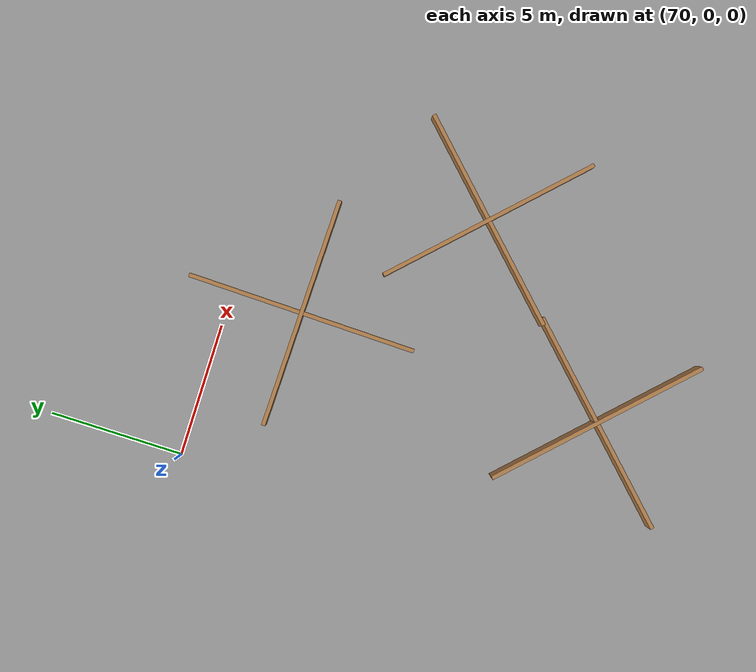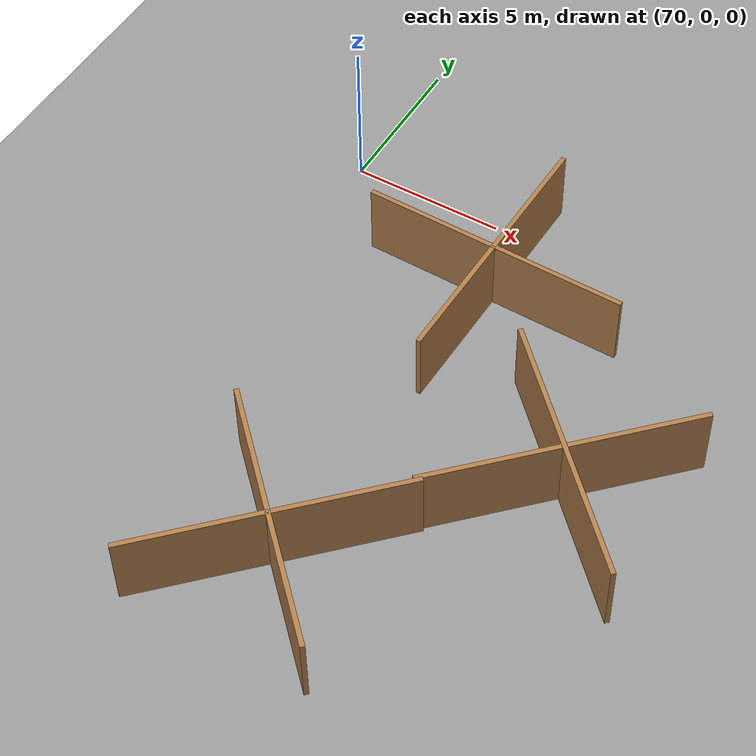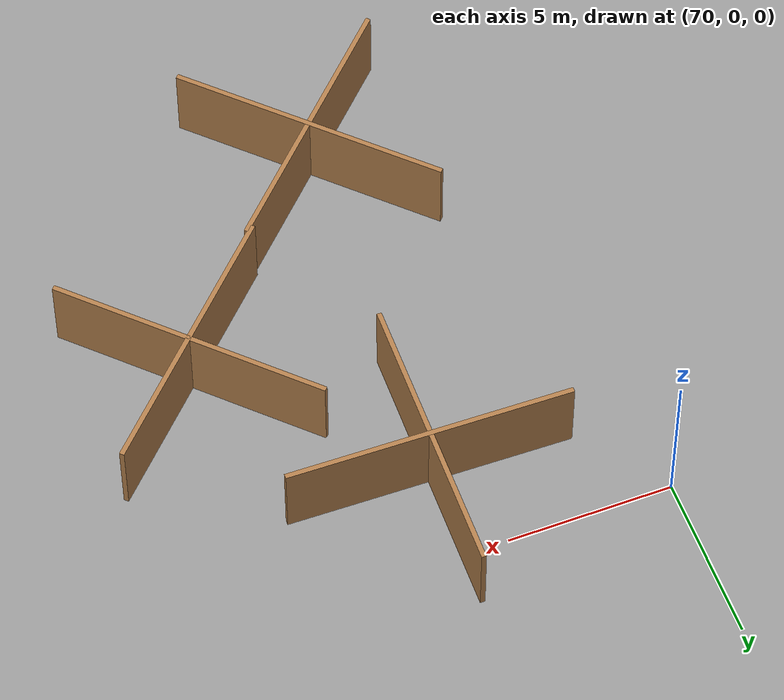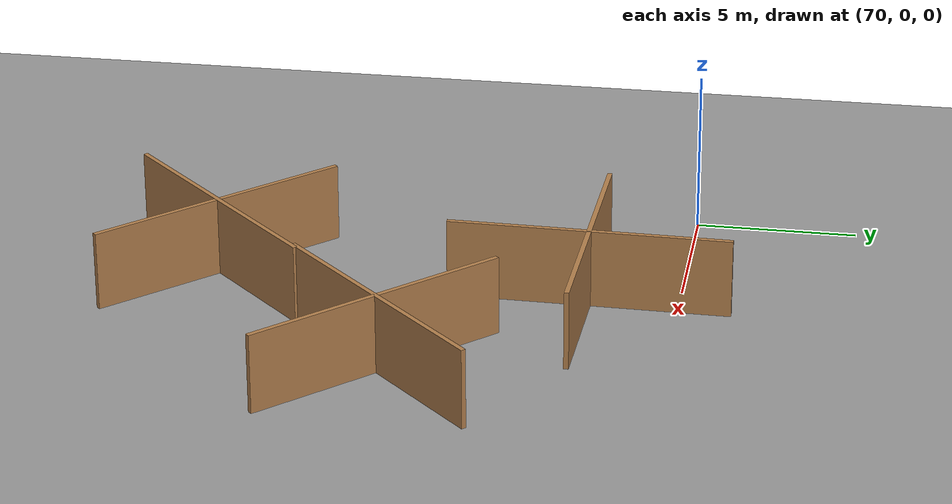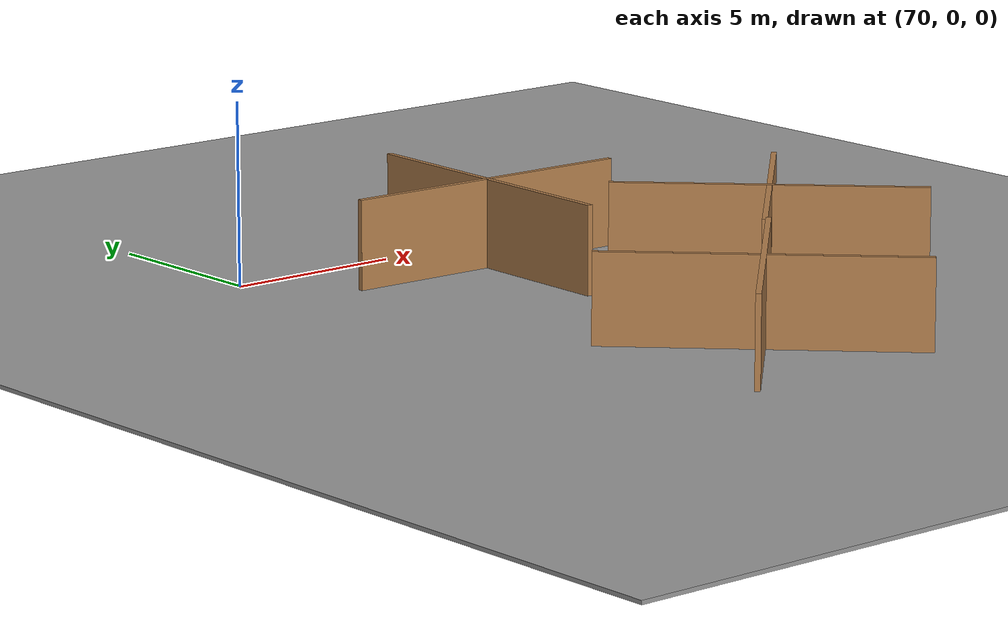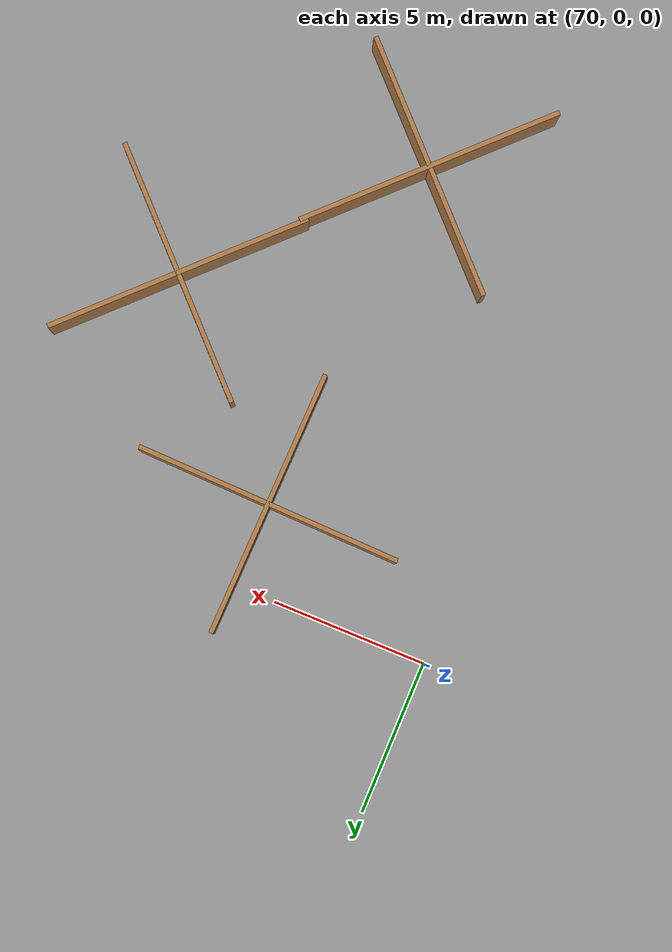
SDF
<sdf version="1.6">
 <world name="default">
  <model name="ground_plane">
   <static>1</static>
   <link name="link">
    <collision name="collision">
     <geometry><plane><normal>0 0 1</normal><size>100 100</size></plane></geometry>
     <surface><friction><ode><mu>100</mu><mu2>50</mu2></ode></friction></surface>
    </collision>
    <visual name="visual">
     <cast_shadows>0</cast_shadows>
     <geometry><plane><normal>0 0 1</normal><size>100 100</size></plane></geometry>
     <material>
      <script><uri>file://media/materials/scripts/gazebo.material</uri><name>Gazebo/Grey</name></script>
     </material>
    </visual>
   </link>
  </model>
  <model name="obs3_2">
   <pose>81.6152 -8.17533 0 0 -0 0</pose>
   <link name="Wall_0">
    <collision name="Wall_0_Collision">
     <geometry><box><size>8.63528 0.15 2.5</size></box></geometry>
     <pose>0 0 1.25 0 -0 0</pose>
    </collision>
    <visual name="Wall_0_Visual">
     <pose>0 0 1.25 0 -0 0</pose>
     <geometry><box><size>8.63528 0.15 2.5</size></box></geometry>
     <material>
      <script><uri>file://media/materials/scripts/gazebo.material</uri><name>Gazebo/Wood</name></script>
      <ambient>1 1 1 1</ambient>
     </material>
    </visual>
    <pose>0 0 0 0 0 -0.785398</pose>
   </link>
   <link name="Wall_2">
    <collision name="Wall_2_Collision">
     <geometry><box><size>8.63528 0.15 2.5</size></box></geometry>
     <pose>0 0 1.25 0 -0 0</pose>
    </collision>
    <visual name="Wall_2_Visual">
     <pose>0 0 1.25 0 -0 0</pose>
     <geometry><box><size>8.63528 0.15 2.5</size></box></geometry>
     <material>
      <script><uri>file://media/materials/scripts/gazebo.material</uri><name>Gazebo/Wood</name></script>
      <ambient>1 1 1 1</ambient>
     </material>
    </visual>
    <pose>0 0 0 0 0 -2.35619</pose>
   </link>
   <static>1</static>
  </model>
  <model name="ground_plane_0">
   <static>1</static>
   <link name="link">
    <collision name="collision">
     <geometry><plane><normal>0 0 1</normal><size>100 100</size></plane></geometry>
     <surface><friction><ode><mu>100</mu><mu2>50</mu2></ode></friction></surface>
    </collision>
    <visual name="visual">
     <cast_shadows>0</cast_shadows>
     <geometry><plane><normal>0 0 1</normal><size>100 100</size></plane></geometry>
     <material>
      <script><uri>file://media/materials/scripts/gazebo.material</uri><name>Gazebo/Grey</name></script>
     </material>
    </visual>
   </link>
   <pose>94.7665 -0.095445 0 0 -0 0</pose>
  </model>
  <model name="obs3_16">
   <pose>76.3399 -2.69677 0 0 -0 0.762807</pose>
   <link name="Wall_0">
    <collision name="Wall_0_Collision">
     <geometry><box><size>8.63528 0.15 2.5</size></box></geometry>
     <pose>0 0 1.25 0 -0 0</pose>
    </collision>
    <visual name="Wall_0_Visual">
     <pose>0 0 1.25 0 -0 0</pose>
     <geometry><box><size>8.63528 0.15 2.5</size></box></geometry>
     <material>
      <script><uri>file://media/materials/scripts/gazebo.material</uri><name>Gazebo/Wood</name></script>
      <ambient>1 1 1 1</ambient>
     </material>
    </visual>
    <pose>0 0 0 0 0 -0.785398</pose>
   </link>
   <link name="Wall_2">
    <collision name="Wall_2_Collision">
     <geometry><box><size>8.63528 0.15 2.5</size></box></geometry>
     <pose>0 0 1.25 0 -0 0</pose>
    </collision>
    <visual name="Wall_2_Visual">
     <pose>0 0 1.25 0 -0 0</pose>
     <geometry><box><size>8.63528 0.15 2.5</size></box></geometry>
     <material>
      <script><uri>file://media/materials/scripts/gazebo.material</uri><name>Gazebo/Wood</name></script>
      <ambient>1 1 1 1</ambient>
     </material>
    </visual>
    <pose>0 0 0 0 0 -2.35619</pose>
   </link>
   <static>1</static>
  </model>
  <model name="obs3_18">
   <pose>75.7532 -14.1636 0 0 -0 0</pose>
   <link name="Wall_0">
    <collision name="Wall_0_Collision">
     <geometry><box><size>8.63528 0.15 2.5</size></box></geometry>
     <pose>0 0 1.25 0 -0 0</pose>
    </collision>
    <visual name="Wall_0_Visual">
     <pose>0 0 1.25 0 -0 0</pose>
     <geometry><box><size>8.63528 0.15 2.5</size></box></geometry>
     <material>
      <script><uri>file://media/materials/scripts/gazebo.material</uri><name>Gazebo/Wood</name></script>
      <ambient>1 1 1 1</ambient>
     </material>
    </visual>
    <pose>0 0 0 0 0 -0.785398</pose>
   </link>
   <link name="Wall_2">
    <collision name="Wall_2_Collision">
     <geometry><box><size>8.63528 0.15 2.5</size></box></geometry>
     <pose>0 0 1.25 0 -0 0</pose>
    </collision>
    <visual name="Wall_2_Visual">
     <pose>0 0 1.25 0 -0 0</pose>
     <geometry><box><size>8.63528 0.15 2.5</size></box></geometry>
     <material>
      <script><uri>file://media/materials/scripts/gazebo.material</uri><name>Gazebo/Wood</name></script>
      <ambient>1 1 1 1</ambient>
     </material>
    </visual>
    <pose>0 0 0 0 0 -2.35619</pose>
   </link>
   <static>1</static>
  </model>
 </world>
</sdf>
